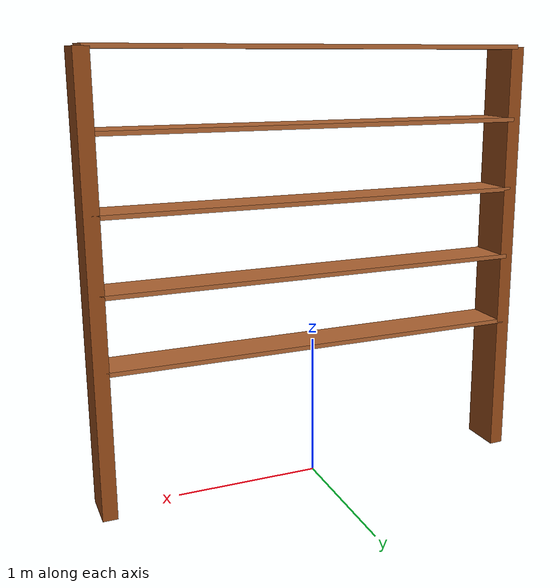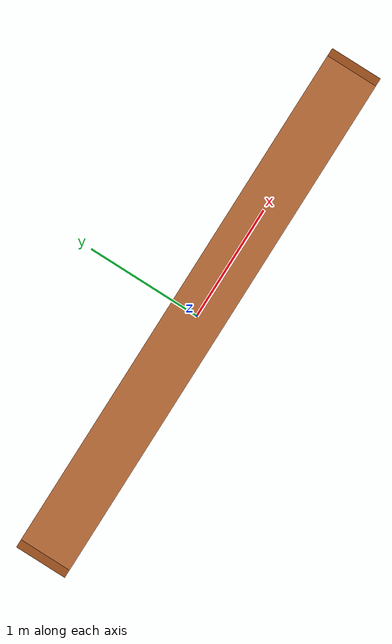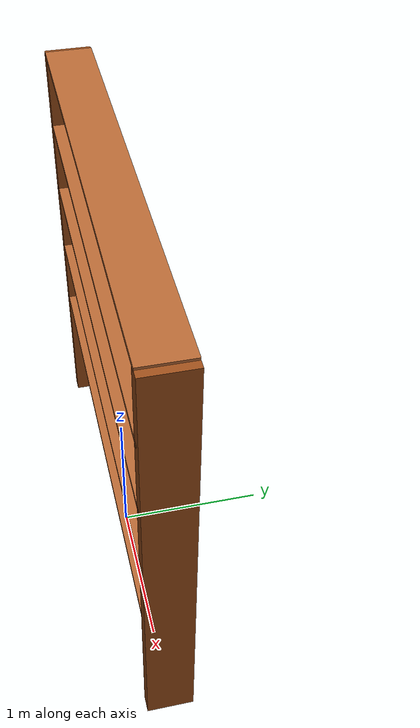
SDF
<?xml version="1.0" ?>
<sdf version="1.6">
  <model name="prateleira">
    <static>true</static>
    <link name="estrutura">

      <collision name="collision">
        <pose>0 0 0 0 0 0</pose>
        <geometry>
          <box>
            <size>3 0.3 3</size>
          </box>
        </geometry>
      </collision>

      <!-- Coluna esquerda -->
      <visual name="coluna_esquerda">
        <pose>-1.5 0 1.5 0 0 0</pose>
        <geometry>
          <box><size>0.1 0.3 3</size></box>
        </geometry>
        <material><ambient>0.6 0.3 0.1 1</ambient></material> <!-- Cor marrom -->
      </visual>

      <!-- Coluna direita -->
      <visual name="coluna_direita">
        <pose>1.5 0 1.5 0 0 0</pose>
        <geometry>
          <box><size>0.1 0.3 3</size></box>
        </geometry>
        <material><ambient>0.6 0.3 0.1 1</ambient></material>
      </visual>

      <!-- Prateleiras -->
      <visual name="prateleira1">
        <pose>0 0 1 0 0 0</pose>
        <geometry>
          <box><size>3.0 0.3 0.03</size></box>
        </geometry>
        <material><ambient>0.7 0.4 0.2 1</ambient></material>
      </visual>

      <visual name="prateleira2">
        <pose>0 0 1.5 0 0 0</pose>
        <geometry>
          <box><size>3.0 0.3 0.03</size></box>
        </geometry>
        <material><ambient>0.7 0.4 0.2 1</ambient></material>
      </visual>

      <visual name="prateleira3">
        <pose>0 0 2.0 0 0 0</pose>
        <geometry>
          <box><size>3.0 0.3 0.03</size></box>
        </geometry>
        <material><ambient>0.7 0.4 0.2 1</ambient></material>
      </visual>

      <visual name="prateleira4">
        <pose>0 0 2.5 0 0 0</pose>
        <geometry>
          <box><size>3.0 0.3 0.03</size></box>
        </geometry>
        <material><ambient>0.7 0.4 0.2 1</ambient></material>
      </visual>

      <visual name="prateleira5">
        <pose>0 0 3 0 0 0</pose>
        <geometry>
          <box><size>3.0 0.3 0.03</size></box>
        </geometry>
        <material><ambient>0.7 0.4 0.2 1</ambient></material>
      </visual>

    </link>
  </model>
</sdf>
